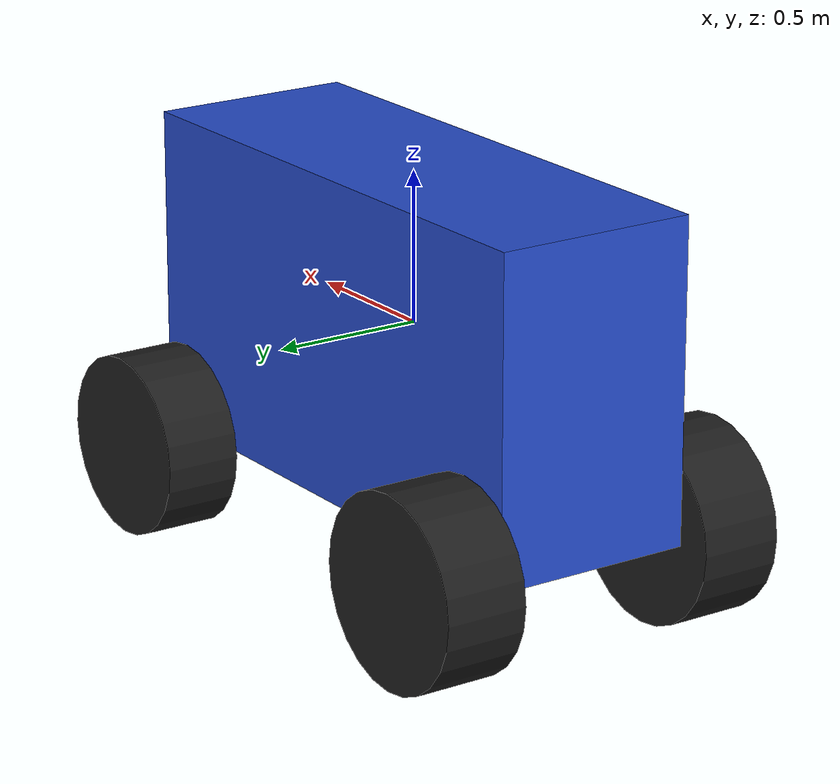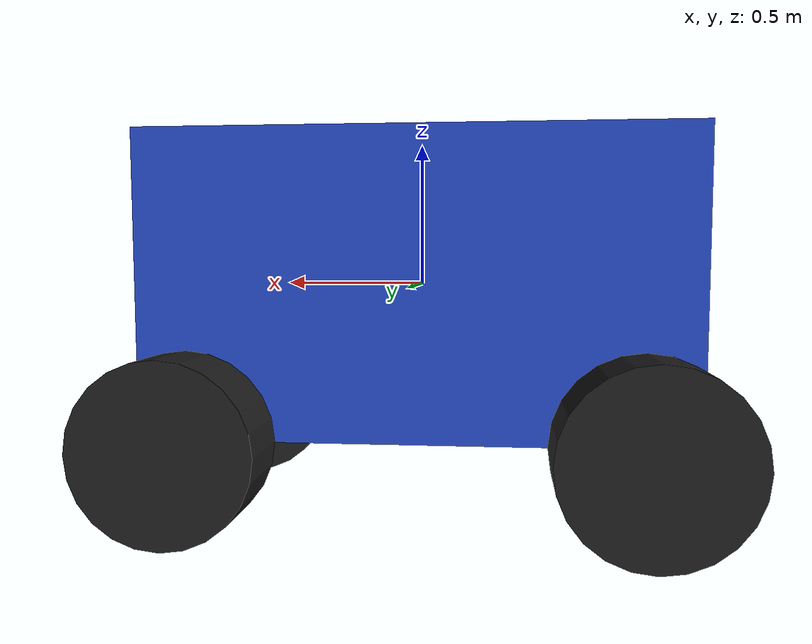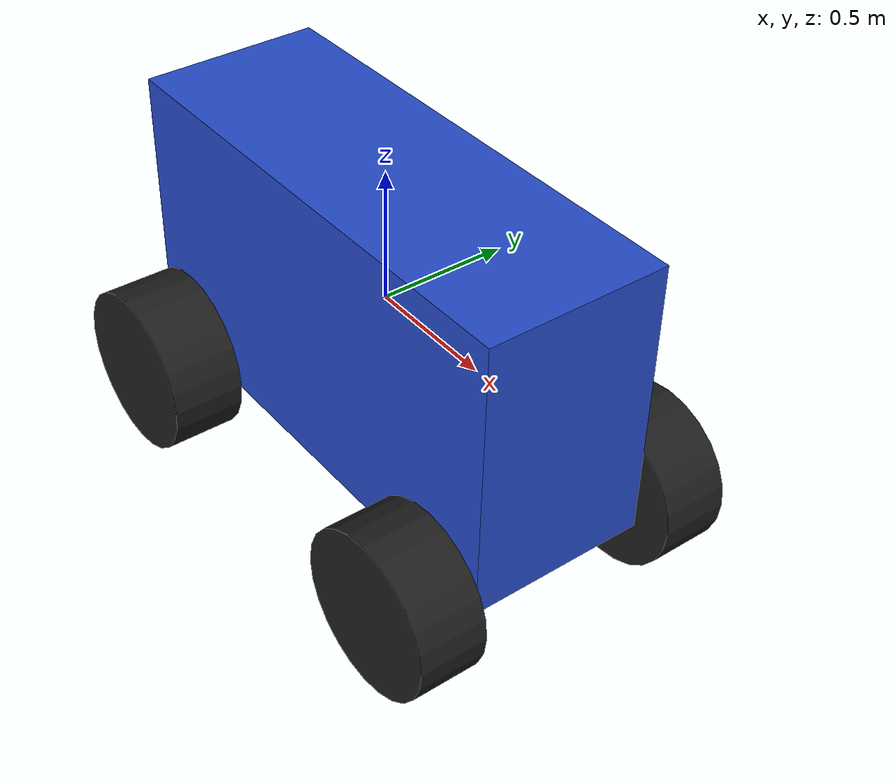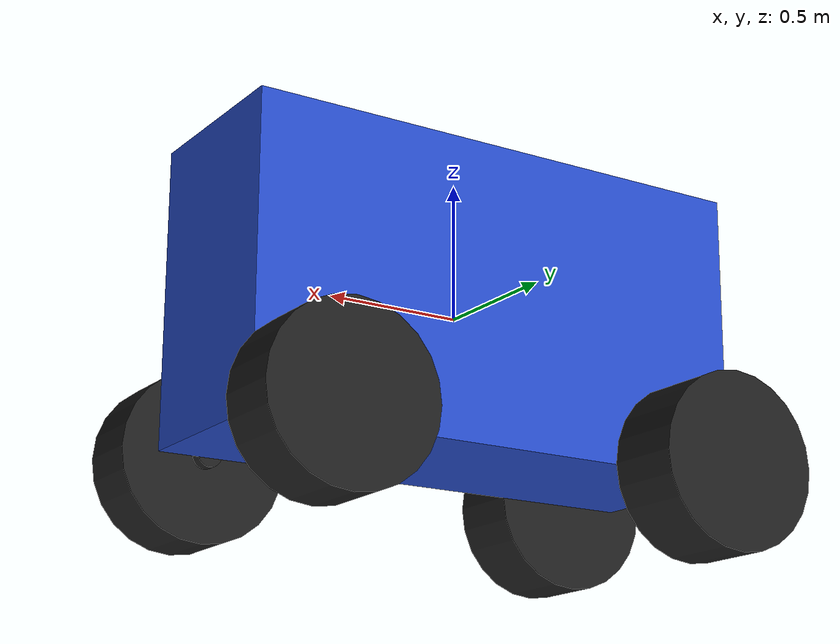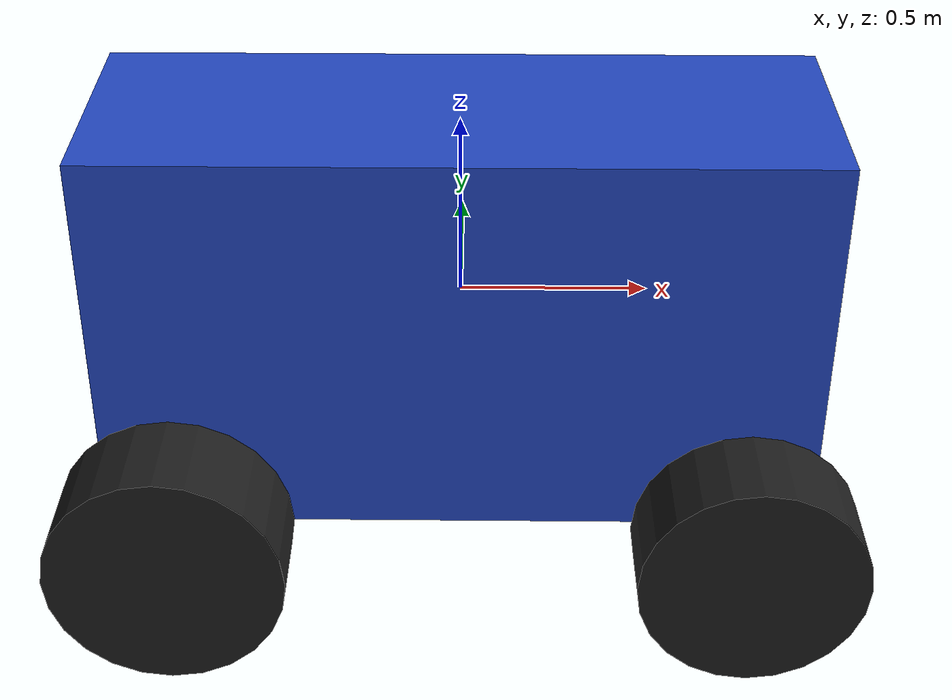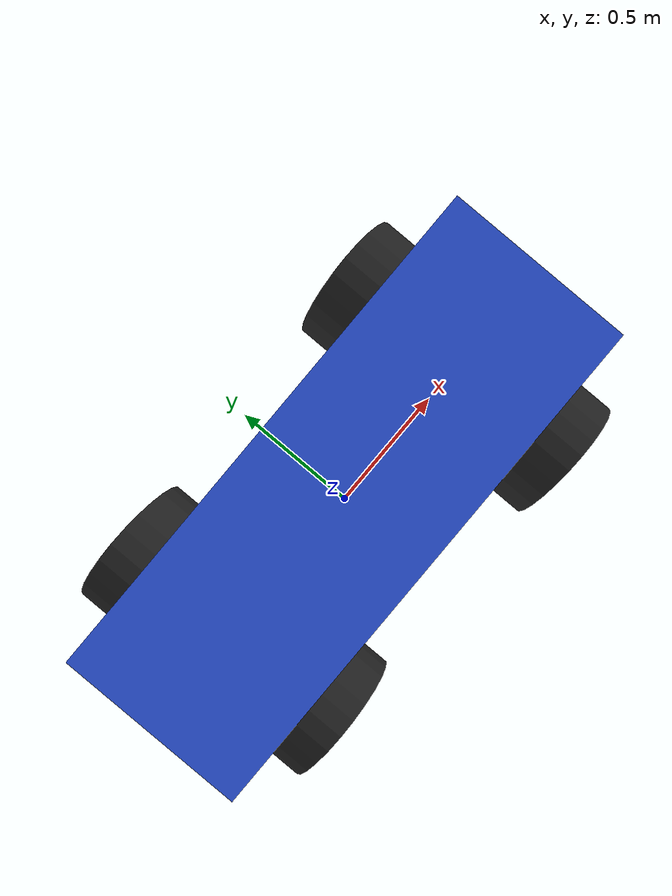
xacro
<?xml version="1.0"?>

<robot name="basic_geometry_pig"
    xmlns:xacro="http://www.ros.org/wiki/xacro">

    <!-- Standard Params -->
    <xacro:property name="pi" value="3.1415" />

    <!-- Degree-to-radian conversions -->
    <xacro:property name="degrees_45" value="0.785398163"/>
    <xacro:property name="degrees_90" value="1.57079633"/>
    <xacro:property name="degrees_180" value="3.14159265"/>

    <!-- Inertia Generator -->
    <xacro:macro name="default_inertial" params="mass">
        <inertial>
            <mass value="${mass}" />
            <inertia ixx="1.0" ixy="0.0" ixz="0.0" iyy="1.0" iyz="0.0" izz="1.0" />
        </inertial>
    </xacro:macro>

    <xacro:property name="axle_eff_limit" value="100"/>
    <xacro:property name="axle_vel_limit" value="39.02"/>

    <!-- Servo_stall_torque of the direction axis in Nm. servo_no_load_speed is
       measured in rad/s. -->
    <xacro:property name="servo_stall_torque" value="100"/>
    <xacro:property name="servo_no_load_speed" value="100"/>

    <!-- Basic Geometry of Body -->
    <xacro:property name="width" value="0.680618" />
    <xacro:property name="height" value="1.065022" />
    <xacro:property name="length" value="1.91" />

    <!-- The Ackerman Steering Hub -->
    <xacro:property name="ackerman_joint_diameter" value="0.09" />
    <xacro:property name="ackerman_joint_width" value="0.09" />

    <!-- Front Wheel Properties -->
    <xacro:property name="front_wheel_width" value=".254" />
    <xacro:property name="front_wheel_diameter" value="0.605" />

    <!-- Rear Wheel Properties -->
    <xacro:property name="rear_wheel_width" value="0.2794" />
    <xacro:property name="rear_wheel_diameter" value="0.635" />

    <!-- Main Body of Little Pig -->
    <link name="base_link">
        <visual>
            <geometry>
                <box size="${length} ${width} ${height}"/>
            </geometry>
            <material name="blue" />
        </visual>
        <collision>
            <geometry>
                <box size="${length} ${width} ${height}"/>
            </geometry>
        </collision>
        <inertial>
            <origin xyz="0.0 0.0 0.0" rpy="0.0 0.0 0.0"/>
            <mass value="49.8952"/>
            <inertia ixx="11.48" ixy="0.0" ixz="0.0" iyy="1.737" iyz="0.0" izz="10.52"/>
        </inertial>
    </link>

    <!-- Gazebo Interface -->
    <gazebo reference="base_link">
        <material>Gazebo/Blue</material>
    </gazebo>

    <!-- Ackerman Steering Macro -->
    <xacro:macro name="ackerman_steering" params="prefix reflect">

        <!-- The Link -->
        <link name="${prefix}_ackerman_link">
            <visual>
                <origin xyz="0.0 0.0 0.0" rpy="${pi/2} 0.0 0.0"/>
                <geometry>
                    <cylinder radius="${ackerman_joint_diameter/2}" length="${ackerman_joint_width}"/>
                </geometry>
                <material name="black" />
            </visual>
            <collision>
                <origin xyz="0.0 0.0 0.0" rpy="${pi/2} 0.0 0.0"/>
                <geometry>
                    <cylinder radius="${ackerman_joint_diameter/2}" length="${ackerman_joint_width}"/>
                </geometry>
            </collision>
            <xacro:default_inertial mass="2"/>
        </link>

        <!-- The Joint -->
        <joint name="base_link_${prefix}_ackerman_link" type="revolute">
            <axis xyz="0.0 0.0 1.0" rpy="0.0 0.0 0.0"/>
            <parent link="base_link"/>
            <child link="${prefix}_ackerman_link"/>
            <origin xyz="${length / 2.5} ${((ackerman_joint_width/2) + (width/2)) * reflect} -${(height / 2.25) + (ackerman_joint_diameter / 2)}" rpy="0.0 0.0 0.0"/>
            <limit lower="${-degrees_45}" upper="${degrees_45}" effort="${servo_stall_torque}" velocity="${servo_no_load_speed}"/>
        </joint>

        <!-- Gazebo Interface -->
        <gazebo reference="${prefix}_ackerman_link">
            <mu1 value="1.0"/>
            <mu2 value="1.0"/>
            <kp value="10000000.0" />
            <kd value="1.0" />
            <fdir1 value="1 0 0"/>
            <material>Gazebo/Black</material>
        </gazebo>

        <!-- The Transmission -->
        <transmission name="base_link_${prefix}_ackerman_link_trans">
            <type>transmission_interface/SimpleTransmission</type>
            <joint name="base_link_${prefix}_ackerman_link">
                <hardwareInterface>hardware_interface/EffortJointInterface</hardwareInterface>
            </joint>
            <actuator name="base_link_${prefix}_ackerman_link_motor">
                <hardwareInterface>hardware_interface/EffortJointInterface</hardwareInterface>
                <mechanicalReduction>1</mechanicalReduction>
            </actuator>
        </transmission>

    </xacro:macro>

    <!-- Front Wheel Macro -->
    <xacro:macro name="front_wheel" params="prefix suffix reflect">

        <!-- The Link -->
        <link name="front_${suffix}_wheel">
            <visual>
                <origin xyz="0.0 ${(front_wheel_width/2) * reflect} 0.0" rpy="${pi/2} 0.0 0.0"/>
                <geometry>
                    <cylinder radius="${front_wheel_diameter/2}" length="${front_wheel_width}"/>
                </geometry>
                <material name="black" />
            </visual>
            <collision>
                <origin xyz="0.0 0.0 0.0" rpy="${pi/2} 0.0 0.0"/>
                <geometry>
                    <cylinder radius="${front_wheel_diameter/2}" length="${front_wheel_width}"/>
                </geometry>
            </collision>
            <inertial>
                <origin xyz="0.0 0.0 0.0" rpy="0.0 0.0 0.0"/>
                <mass value="20.995"/>
                <inertia ixx="0.996" ixy="0.0" ixz="0.0" iyy="0.612" iyz="0.0" izz="0.612"/>
            </inertial>
        </link>

        <!-- The Joint -->
        <joint name="${prefix}_ackerman_link_front_${suffix}_wheel" type="continuous">
            <axis xyz="0.0 1.0 0.0"/>
            <parent link="${prefix}_ackerman_link"/>
            <child link="front_${suffix}_wheel"/>
            <origin xyz="0.0 0.0 0.0" rpy="0.0 0.0 0.0"/>
            <limit effort="${axle_eff_limit}" velocity="${axle_vel_limit}"/>
        </joint>

        <!-- Gazebo Interface -->
        <gazebo reference="front_${suffix}_wheel">
            <mu1 value="1.0"/>
            <mu2 value="1.0"/>
            <kp value="10000000.0" />
            <kd value="1.0" />
            <fdir1 value="0 0 1"/>
            <material>Gazebo/Black</material>
        </gazebo>

        <!-- The Transmission -->
        <transmission name="${prefix}_ackerman_link_front_${suffix}_wheel_trans">
            <type>transmission_interface/SimpleTransmission</type>
            <joint name="${prefix}_ackerman_link_front_${suffix}_wheel">
                <hardwareInterface>hardware_interface/VelocityJointInterface</hardwareInterface>
            </joint>
            <actuator name="${prefix}_ackerman_link_front_${suffix}_wheel_motor">
                <hardwareInterface>hardware_interface/VelocityJointInterface</hardwareInterface>
                <mechanicalReduction>1</mechanicalReduction>
            </actuator>
        </transmission>

    </xacro:macro>

    <!-- Back Wheel Macro -->
    <xacro:macro name="rear_wheel" params="suffix reflect">

        <!-- The Link -->
        <link name="rear_${suffix}_wheel">
            <visual>
                <origin xyz="0.0 ${(rear_wheel_width / 2) * reflect} 0.0" rpy="${pi/2} 0.0 0.0"/>
                <geometry>
                    <cylinder radius="${rear_wheel_diameter/2}" length="${rear_wheel_width}"/>
                </geometry>
                <material name="black" />
            </visual>
            <collision>
                <origin xyz="0.0 0.0 0.0" rpy="${pi/2} 0.0 0.0"/>
                <geometry>
                    <cylinder radius="${rear_wheel_diameter/2}" length="${rear_wheel_width}"/>
                </geometry>
            </collision>
            <inertial>
                <origin xyz="0.0 0.0 0.0" rpy="0.0 0.0 0.0"/>
                <mass value="20.995"/>
                <inertia ixx="0.996" ixy="0.0" ixz="0.0" iyy="0.612" iyz="0.0" izz="0.612"/>
            </inertial>
        </link>

        <!-- The Joint -->
        <joint name="base_to_rear_${suffix}_wheel" type="continuous">
            <axis xyz="0.0 1.0 0.0"/>
            <parent link="base_link"/>
            <child link="rear_${suffix}_wheel"/>
            <origin xyz="-${length / 2.5} ${(width /2) * reflect} -${(height / 5) + (rear_wheel_diameter / 2)}" rpy="0.0 0.0 0.0"/>
        </joint>

        <!-- Gazebo Interface -->
        <gazebo reference="rear_${suffix}_wheel">
            <material>Gazebo/Black</material>
        </gazebo>

        <!-- The Transmission -->

    </xacro:macro>

    <!-- Call the ackermans in for left/right -->
    <xacro:ackerman_steering prefix="left" reflect="1" />
    <xacro:ackerman_steering prefix="right" reflect="-1" />

    <!-- Call the front wheels in left/right -->
    <xacro:front_wheel prefix="left" suffix="left" reflect="1" />
    <xacro:front_wheel prefix="right" suffix="right" reflect="-1" />

    <!-- Call the rear wheels in left/right-->
    <xacro:rear_wheel suffix="left" reflect="1" />
    <xacro:rear_wheel suffix="right" reflect="-1" />

    <!-- Gazebo plugin for ROS Control -->
    <gazebo>
        <plugin name="gazebo_ros_control" filename="libgazebo_ros_control.so">
            <robotNamespace>/basic_geometry_pig</robotNamespace>
        </plugin>
    </gazebo>
</robot>
